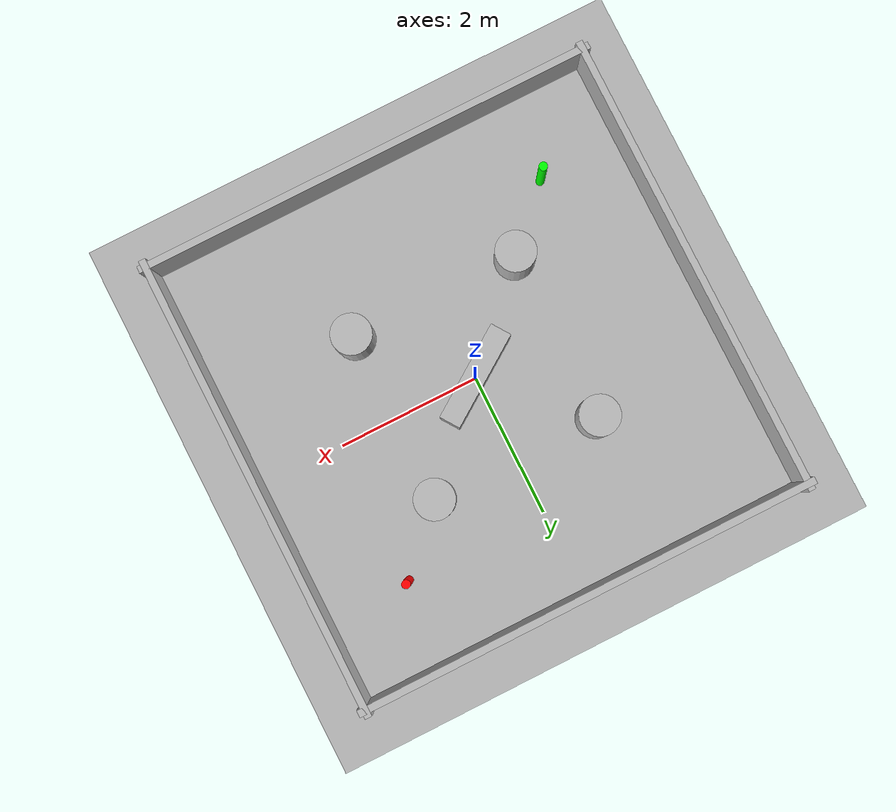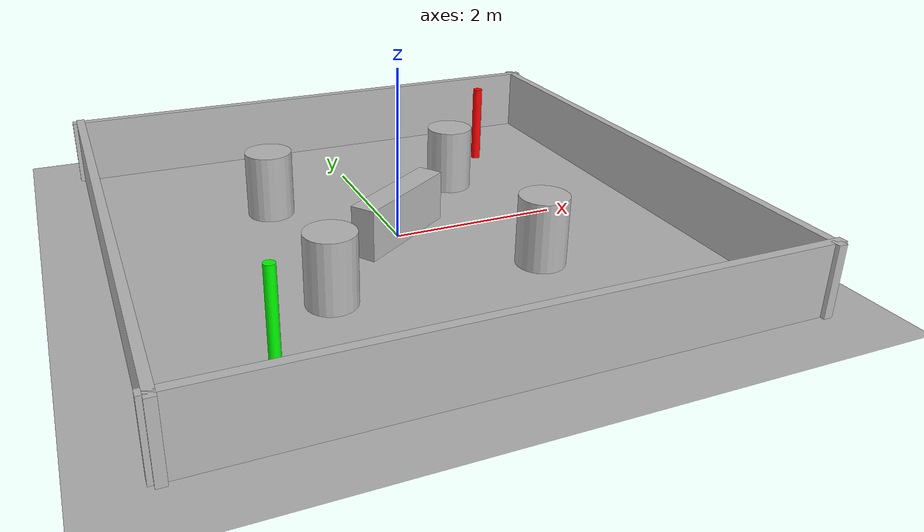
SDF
<?xml version="1.0" ?>

<sdf version="1.8">
  <world name="obstacles">

    <physics name="1ms" type="ignored">
      <max_step_size>0.001</max_step_size>
      <real_time_factor>1.0</real_time_factor>
    </physics>

    <plugin filename="ignition-gazebo-physics-system"
            name="ignition::gazebo::systems::Physics"/>
    <plugin filename="ignition-gazebo-user-commands-system"
            name="ignition::gazebo::systems::UserCommands"/>
    <plugin filename="ignition-gazebo-scene-broadcaster-system"
            name="ignition::gazebo::systems::SceneBroadcaster"/>

    <plugin filename="ignition-gazebo-sensors-system"
            name="ignition::gazebo::systems::Sensors">
      <render_engine>ogre2</render_engine>
    </plugin>

    <light type="directional" name="sun">
      <cast_shadows>true</cast_shadows>
      <pose>0 0 10 0 0 0</pose>
      <diffuse>0.8 0.8 0.8 1</diffuse>
      <specular>0.2 0.2 0.2 1</specular>
      <attenuation>
        <range>1000</range>
        <constant>0.9</constant>
        <linear>0.01</linear>
        <quadratic>0.001</quadratic>
      </attenuation>
      <direction>-0.5 0.1 -0.9</direction>
    </light>

    <model name="ground_plane">
      <static>true</static>
      <link name="link">
        <collision name="collision">
          <geometry>
            <plane><normal>0 0 1</normal><size>100 100</size></plane>
          </geometry>
          <surface>
            <friction><ode><mu>1.0</mu><mu2>1.0</mu2></ode></friction>
          </surface>
        </collision>
        <visual name="visual">
          <geometry>
            <plane><normal>0 0 1</normal><size>100 100</size></plane>
          </geometry>
          <material>
            <ambient>0.7 0.7 0.7 1</ambient>
            <diffuse>0.7 0.7 0.7 1</diffuse>
            <specular>0.1 0.1 0.1 1</specular>
          </material>
        </visual>
      </link>
    </model>

    <model name="point_A">
      <static>true</static>
      <pose>-2.0 -2.0 0.5 0 0 0</pose>
      <link name="link">
        <visual name="visual">
          <geometry>
            <cylinder><radius>0.06</radius><length>1.0</length></cylinder>
          </geometry>
          <material>
            <ambient>0 1 0 1</ambient>
            <diffuse>0 1 0 1</diffuse>
          </material>
        </visual>
      </link>
    </model>

    <model name="point_B">
      <static>true</static>
      <pose>2.0 2.0 0.5 0 0 0</pose>
      <link name="link">
        <visual name="visual">
          <geometry>
            <cylinder><radius>0.06</radius><length>1.0</length></cylinder>
          </geometry>
          <material>
            <ambient>1 0 0 1</ambient>
            <diffuse>1 0 0 1</diffuse>
          </material>
        </visual>
      </link>
    </model>

    <model name="center_block">
      <static>true</static>
      <pose>0.0 0.0 0.3 0 0 0.6</pose>
      <link name="link">
        <collision name="collision">
          <geometry><box><size>1.4 0.3 0.6</size></box></geometry>
        </collision>
        <visual name="visual">
          <geometry><box><size>1.4 0.3 0.6</size></box></geometry>
        </visual>
      </link>
    </model>

    <model name="corner_c1">
      <static>true</static>
      <pose>-1.2 1.2 0.4 0 0 0</pose>
      <link name="link">
        <collision name="collision">
          <geometry><cylinder><radius>0.28</radius><length>0.8</length></cylinder></geometry>
        </collision>
        <visual name="visual">
          <geometry><cylinder><radius>0.28</radius><length>0.8</length></cylinder></geometry>
        </visual>
      </link>
    </model>

    <model name="corner_c2">
      <static>true</static>
      <pose>1.2 1.2 0.4 0 0 0</pose>
      <link name="link">
        <collision name="collision">
          <geometry><cylinder><radius>0.28</radius><length>0.8</length></cylinder></geometry>
        </collision>
        <visual name="visual">
          <geometry><cylinder><radius>0.28</radius><length>0.8</length></cylinder></geometry>
        </visual>
      </link>
    </model>

    <model name="corner_c3">
      <static>true</static>
      <pose>-1.2 -1.2 0.4 0 0 0</pose>
      <link name="link">
        <collision name="collision">
          <geometry><cylinder><radius>0.28</radius><length>0.8</length></cylinder></geometry>
        </collision>
        <visual name="visual">
          <geometry><cylinder><radius>0.28</radius><length>0.8</length></cylinder></geometry>
        </visual>
      </link>
    </model>

    <model name="corner_c4">
      <static>true</static>
      <pose>1.2 -1.2 0.4 0 0 0</pose>
      <link name="link">
        <collision name="collision">
          <geometry><cylinder><radius>0.28</radius><length>0.8</length></cylinder></geometry>
        </collision>
        <visual name="visual">
          <geometry><cylinder><radius>0.28</radius><length>0.8</length></cylinder></geometry>
        </visual>
      </link>
    </model>

    <model name="wall_north">
      <static>true</static>
      <pose>0.0 3.2 0.4 0 0 0</pose>
      <link name="link">
        <collision name="collision">
          <geometry><box><size>6.6 0.1 0.8</size></box></geometry>
        </collision>
        <visual name="visual">
          <geometry><box><size>6.6 0.1 0.8</size></box></geometry>
        </visual>
      </link>
    </model>

    <model name="wall_south">
      <static>true</static>
      <pose>0.0 -3.2 0.4 0 0 0</pose>
      <link name="link">
        <collision name="collision">
          <geometry><box><size>6.6 0.1 0.8</size></box></geometry>
        </collision>
        <visual name="visual">
          <geometry><box><size>6.6 0.1 0.8</size></box></geometry>
        </visual>
      </link>
    </model>

    <model name="wall_east">
      <static>true</static>
      <pose>3.2 0.0 0.4 0 0 0</pose>
      <link name="link">
        <collision name="collision">
          <geometry><box><size>0.1 6.6 0.8</size></box></geometry>
        </collision>
        <visual name="visual">
          <geometry><box><size>0.1 6.6 0.8</size></box></geometry>
        </visual>
      </link>
    </model>

    <model name="wall_west">
      <static>true</static>
      <pose>-3.2 0.0 0.4 0 0 0</pose>
      <link name="link">
        <collision name="collision">
          <geometry><box><size>0.1 6.6 0.8</size></box></geometry>
        </collision>
        <visual name="visual">
          <geometry><box><size>0.1 6.6 0.8</size></box></geometry>
        </visual>
      </link>
    </model>
  </world>
</sdf>
